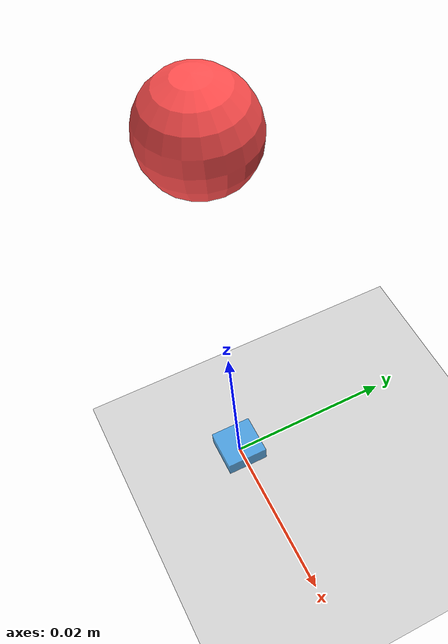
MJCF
<mujoco model="em_sensor_custom1">
  <!--
    定制品1（指尖型）规格：6×6 测点，20mm × 17mm × 9mm，120Hz
    感知区域：5mm×5mm（6点×1mm间距），位于传感器表面中心
    传感器总输出维度：112（6×6×3=108 + 合力3 + 温度1）
    通信接口：CAN（仅注释说明，不影响仿真）
  -->
  <option gravity="0 0 -9.81" timestep="0.00833"
          solver="Newton" integrator="implicit"
          cone="elliptic" impratio="10"/>

  <default>
    <geom condim="3" solref="0.01 0.9"
          solimp="0.9 0.999 0.005" friction="1 0.1 0.01"/>
  </default>

  <worldbody>
    <light pos="0 0 1" dir="0 0 -1"/>
    <geom name="ground" type="plane" size="0.1 0.1 0.01" rgba="0.8 0.8 0.8 1"/>

    <!-- 传感器主体（固定在世界） -->
    <body name="sensor_body" pos="0 0 0.001">
      <!-- 感知面：5mm×5mm（6×6 测点覆盖区域），厚度 1mm -->
      <geom name="sensor_pad" type="box"
            size="0.0025 0.0025 0.001"
            rgba="0.2 0.6 0.9 0.8" mass="0.05"/>
      <!-- 36 个 cell site（gen_sites.py 生成后插入此处，仅可视化） -->
    </body>

    <!-- 测试用自由落体球（半径 5mm，质量 10g） -->
    <body name="ball" pos="0 0 0.05">
      <joint name="ball_joint" type="free"/>
      <geom name="ball_geom" type="sphere" size="0.005"
            mass="0.01" rgba="1 0.3 0.3 1"/>
    </body>
  </worldbody>

  <sensor>
    <!-- 112 维用户传感器：由 EMSensorCallback 的 mjcb_sensor 回调填充 -->
    <!-- dim = 6*6*3 + 3 + 1 = 112 -->
    <user name="EM_SENSOR_CUSTOM1" dim="112"
          objtype="geom" objname="sensor_pad"/>
  </sensor>
</mujoco>
